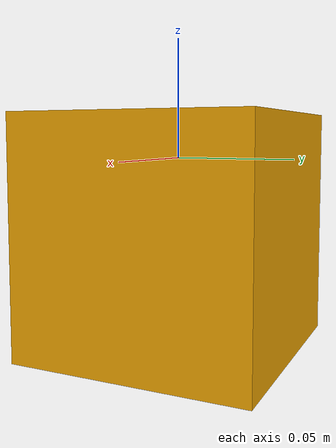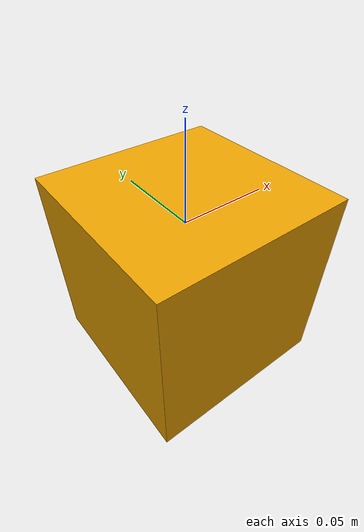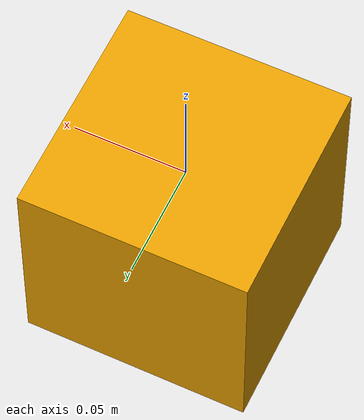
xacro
<?xml version="1.0"?>
<robot name="sensor_rplidar" xmlns:xacro="http://ros.org/wiki/xacro">
	<!-- Joints and Links, standard URDF stuff -->
	<link name="rplidar_link">
		<collision>
			<origin xyz="0 0 0" rpy="0 0 0"/>
			<geometry>
				<box size="0.1 0.1 0.1"/>
			</geometry>
		</collision>

		<visual>
			<origin xyz="0 0 -0.03125" rpy="1.5707 0 0"/>
			<geometry>
				<box size="0.1 0.1 0.1"/>
				<meshfile name="package://my_description/meshes/rplidar.dae" scale="0.001 0.001 0.001" />
			</geometry>
		</visual>

		<inertial>
			<mass value="1e-5"/>
			<origin xyz="0 0 0" rpy="0 0 0"/>
			<inertia ixx="1e-6" ixy="0" ixz="0" iyy="1e-6" iyz="0" izz="1e-6"/>
		</inertial>
	</link>
	<link name="base_link"/>
	<joint name="rplidar_joint" type="continuous">
		<axis xyz="0 1 0"/>
		<origin xyz="0 0 0" rpy="0 0 0 "/>
		<parent link="base_link"/>
		<child link="rplidar_link"/>
	</joint>

</robot>
